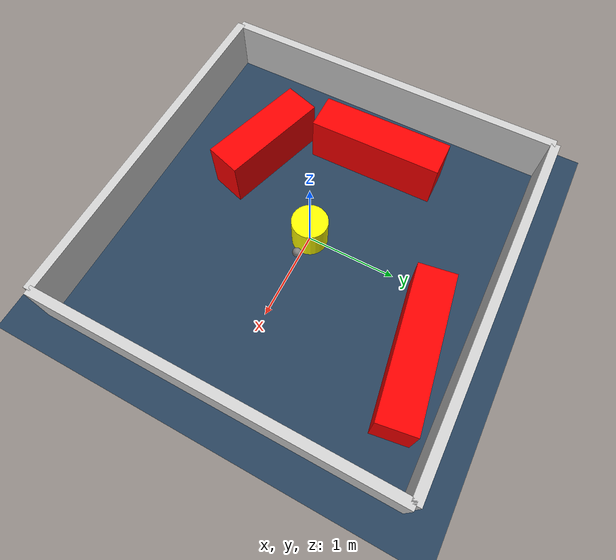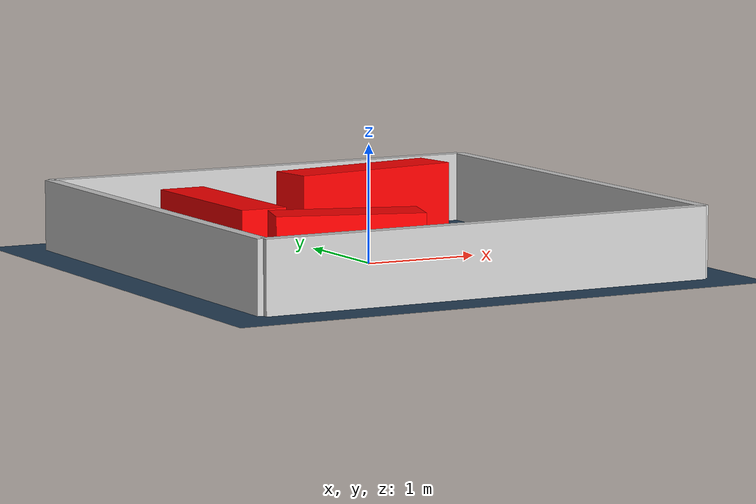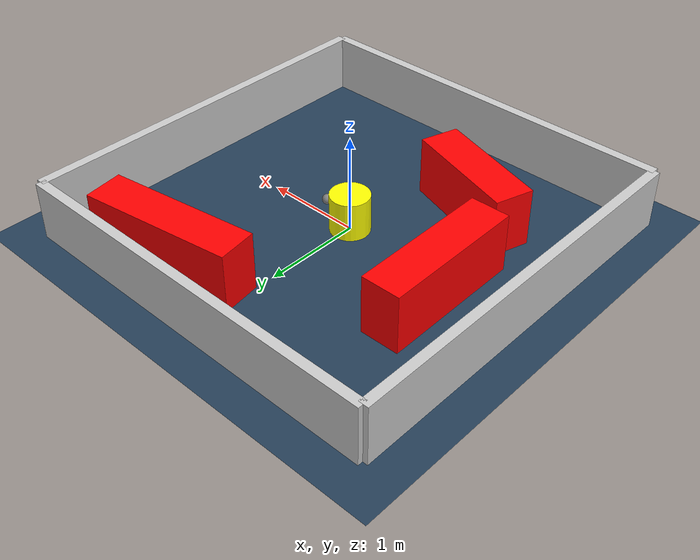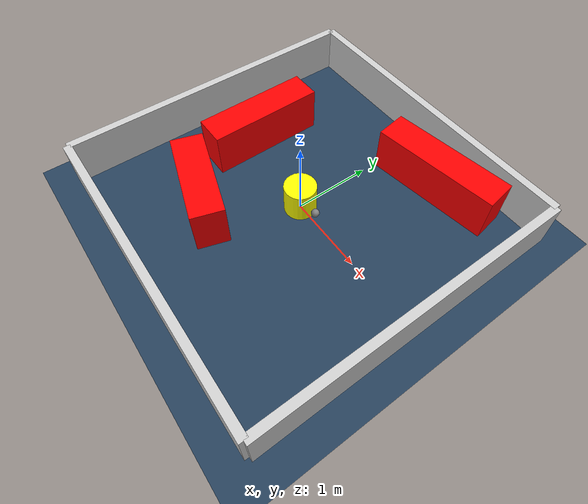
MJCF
<?xml version="1.0" ?>
<mujoco model="generated_environment">
  <option timestep="0.01" integrator="RK4" cone="elliptic"/>
  <default>
    <geom density="1"/>
  </default>
  <asset>
    <texture builtin="gradient" height="3072" rgb1="0.3 0.5 0.7" rgb2="0 0 0" type="skybox" width="512"/>
    <texture builtin="checker" height="300" mark="edge" markrgb="0.8 0.8 0.8" name="groundplane" rgb1="0.2 0.3 0.4" rgb2="0.1 0.2 0.3" type="2d" width="300"/>
    <material name="groundplane" reflectance="0.2" texrepeat="5 5" texture="groundplane" texuniform="true"/>
    <material name="robot" rgba="0.0 1.0 0.0 1"/>
  </asset>
  <worldbody>
    <light dir="0 0 -1" directional="true" pos="0 0 1.5"/>
    <geom condim="4" friction="1.0 0.005 0.001" material="groundplane" name="floor" size="0 0 0.05" type="plane"/>
    <body name="walls">
      <geom name="wall_1" condim="4" pos="-2.0 0.0 0.3" rgba="0.800000011920929 0.800000011920929 0.800000011920929 1.0" size="0.05 2.0 0.3" type="box"/>
      <geom name="wall_2" condim="4" pos="2.0 0.0 0.3" rgba="0.800000011920929 0.800000011920929 0.800000011920929 1.0" size="0.05 2.0 0.3" type="box"/>
      <geom name="wall_3" condim="4" pos="0.0 -2.0 0.3" rgba="0.800000011920929 0.800000011920929 0.800000011920929 1.0" size="2.0 0.05 0.3" type="box"/>
      <geom name="wall_4" condim="4" pos="0.0 2.0 0.3" rgba="0.800000011920929 0.800000011920929 0.800000011920929 1.0" size="2.0 0.05 0.3" type="box"/>
    </body>
    <body name="robot">
      <joint name="joint_x" type="slide" pos="0 0 0" axis="1 0 0"/>
      <joint name="joint_y" type="slide" pos="0 0 0" axis="0 1 0"/>
      <geom name="robot" type="sphere" pos="0.3 0.0 0.2" size="0.05" mass="5." friction="1.0 0.005 0.0001" condim="4" rgba="0.5 0.5 0.5 1.0"/>
      <site name="sensor_ball"/>
    </body>
    <body name="obstacle_movable_1">
      <geom name="obstacle_movable_1" condim="4" pos="0.0 0.0 0.2" euler="0 0 0.0" friction="1.0 0.005 0.001" rgba="1.0 1.0 0.0 1.0" size="0.2 0.2 0.0" type="cylinder" mass="0.1"/>
      <joint type="free"/>
    </body>
    <body name="obstacle_2_static">
      <geom name="obstacle_2_static" condim="4" pos="-0.7157329495332373 -0.9535938791049496 0.3" euler="0 0 342.77667863176316" friction="1.0 0.005 0.001" rgba="1 0 0 1" size="0.6108940510115397 0.2 0.3" type="box"/>
    </body>
    <body name="obstacle_3_static">
      <geom name="obstacle_3_static" condim="4" pos="-1.2383283592592793 0.24175455596910322 0.3" euler="0 0 270.66237001560876" friction="1.0 0.005 0.001" rgba="1 0 0 1" size="0.7415368217080045 0.2 0.3" type="box"/>
    </body>
    <body name="obstacle_4_static">
      <geom name="obstacle_4_static" condim="4" pos="0.7654623268162983 1.5162213641634648 0.3" euler="0 0 188.68788541832598" friction="1.0 0.005 0.001" rgba="1 0 0 1" size="0.790975996074198 0.2 0.3" type="box"/>
    </body>
  </worldbody>
  <actuator>
    <motor name="actuator_x" joint="joint_x" gear="1" ctrlrange="-1 1"/>
    <motor name="actuator_y" joint="joint_y" gear="1" ctrlrange="-1 1"/>
  </actuator>
</mujoco>
